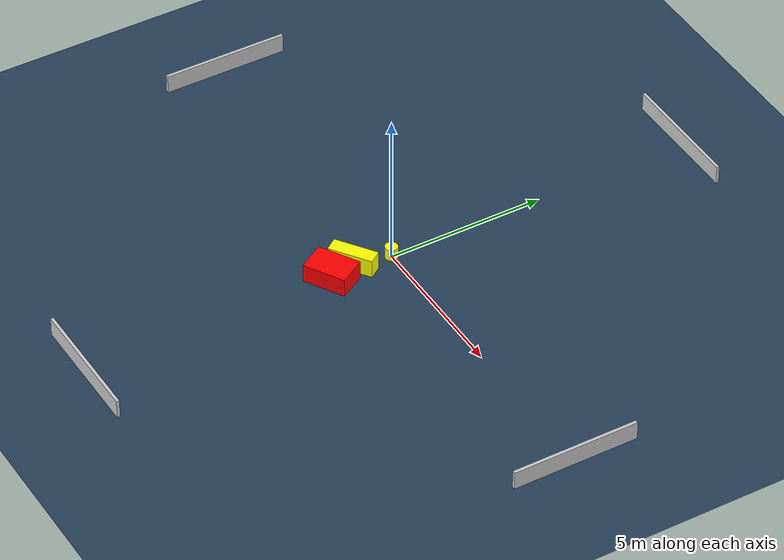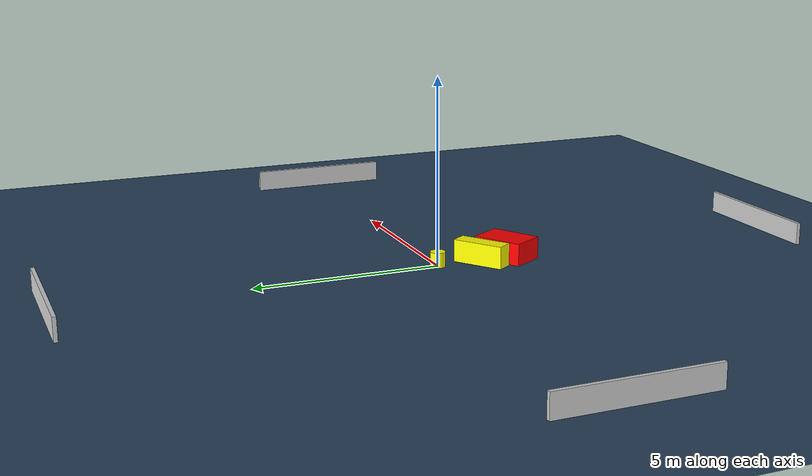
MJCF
<?xml version="1.0" ?>
<mujoco model="generated_environment">
  <option timestep="0.01" integrator="RK4" cone="elliptic"/>
  <default>
    <geom density="1"/>
  </default>
  <asset>
    <texture builtin="gradient" height="3072" name="skybox" rgb1="0.3 0.5 0.7" rgb2="0 0 0" type="skybox" width="512"/>
    <texture builtin="checker" height="300" name="groundplane" rgb1="0.2 0.3 0.4" rgb2="0.1 0.2 0.3" type="2d" width="300"/>
    <material name="groundplane" reflectance="0.2" texrepeat="5 5" texture="groundplane"/>
  </asset>
  <worldbody>
    <light dir="0 0 -1" directional="true" pos="0 0 1.5"/>
    <geom condim="3" friction="0.5 0.005 0.001" material="groundplane" name="floor" pos="0 0 0" size="0 0 0.05" type="plane"/>
    <body name="walls">
      <geom name="wall_1" condim="4" pos="-10.0 0.0 0.3" rgba="0.800000011920929 0.800000011920929 0.800000011920929 1.0" size="0.05 2.0 0.3" type="box"/>
      <geom name="wall_2" condim="4" pos="10.0 0.0 0.3" rgba="0.800000011920929 0.800000011920929 0.800000011920929 1.0" size="0.05 2.0 0.3" type="box"/>
      <geom name="wall_3" condim="4" pos="0.0 -10.0 0.3" rgba="0.800000011920929 0.800000011920929 0.800000011920929 1.0" size="2.0 0.05 0.3" type="box"/>
      <geom name="wall_4" condim="4" pos="0.0 10.0 0.3" rgba="0.800000011920929 0.800000011920929 0.800000011920929 1.0" size="2.0 0.05 0.3" type="box"/>
    </body>
    <body name="robot">
      <joint name="joint_x" type="slide" pos="0 0 0" axis="1 0 0"/>
      <joint name="joint_y" type="slide" pos="0 0 0" axis="0 1 0"/>
      <geom name="robot" type="cylinder" pos="0.0 0.0 0.2" size="0.2 0.2 0.0" mass="5.0" friction="1.0 0.005 0.0001" condim="4" rgba="1.0 1.0 0.0 1.0"/>
    </body>
    <body name="obstacle_1_movable">
      <geom name="obstacle_1_movable" condim="4" pos="-0.21093003770717714 -1.161664224502135 0.3" euler="0 0 215.21589043300642" friction="0.0 0.005 0.001" rgba="1.0 1.0 0.0 1.0" size="0.7066230656858543 0.2286514058488256 0.3" type="box" mass="0.1"/>
      <joint type="free"/>
    </body>
    <body name="obstacle_2_static">
      <geom name="obstacle_2_static" condim="4" pos="-0.023039881155633296 -1.9852036730769933 0.3" euler="0 0 30.448638483882675" friction="0.0 0.005 0.001" rgba="1.0 0.0 0.0 1.0" size="0.6898871329393129 0.4685224272314086 0.3" type="box"/>
    </body>
  </worldbody>
  <actuator>
    <motor name="actuator_x" joint="joint_x" gear="1" ctrlrange="-1 1"/>
    <motor name="actuator_y" joint="joint_y" gear="1" ctrlrange="-1 1"/>
  </actuator>
</mujoco>
